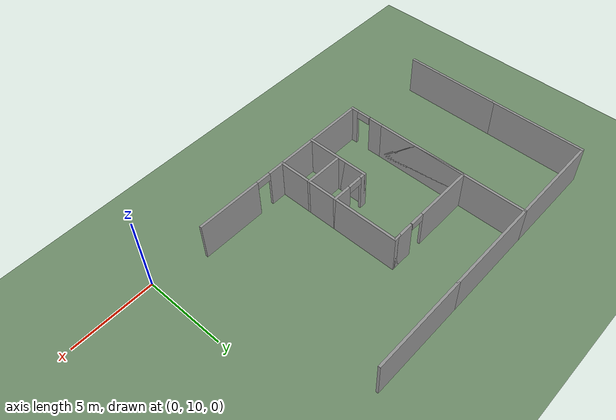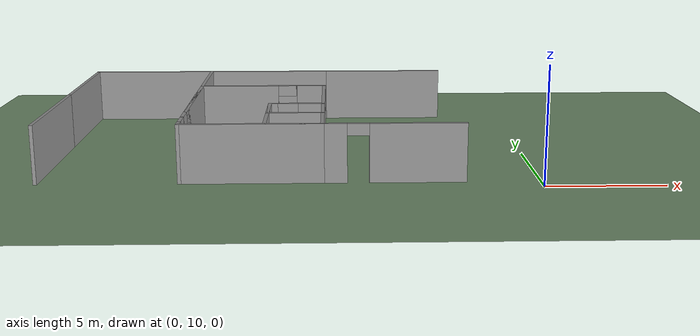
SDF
<sdf version="1.7">
 <world name="default">
  <model name="ground_plane">
   <static>1</static>
   <link name="link">
    <collision name="collision">
     <geometry><plane><normal>0 0 1</normal><size>600 600</size></plane></geometry>
     <surface>
      <contact><collide_bitmask>65535</collide_bitmask></contact>
      <friction><ode><mu>100</mu><mu2>50</mu2></ode></friction>
     </surface>
    </collision>
    <visual name="visual">
     <cast_shadows>0</cast_shadows>
     <geometry><plane><normal>0 0 1</normal><size>100 100</size></plane></geometry>
     <material><ambient>0.45 0.57 0.43 1</ambient><diffuse>0.45 0.57 0.43 1</diffuse></material>
    </visual>
   </link>
  </model>
  <model name="myhal_V3_2">
   <link name="Wall_337">
    <pose>-5.85 20.325 0 0 -0 3.14159</pose>
    <visual name="Wall_337_Visual">
     <pose>0 0 1.25 0 -0 0</pose>
     <geometry><box><size>6 0.15 2.5</size></box></geometry>
     <material>
      <script><uri>file://media/materials/scripts/gazebo.material</uri><name>Gazebo/Grey</name></script>
      <ambient>1 1 1 1</ambient>
      <shader type="pixel"/>
     </material>
     <meta><layer>0</layer></meta>
    </visual>
    <collision name="Wall_337_Collision">
     <pose>0 0 1.25 0 -0 0</pose>
     <geometry><box><size>6 0.15 2.5</size></box></geometry>
     <surface>
      <friction>
       <ode><mu>1</mu><mu2>1</mu2><fdir1>0 0 0</fdir1><slip1>0</slip1><slip2>0</slip2></ode>
       <torsional>
        <coefficient>1</coefficient>
        <patch_radius>0</patch_radius>
        <surface_radius>0</surface_radius>
        <use_patch_radius>1</use_patch_radius>
        <ode><slip>0</slip></ode>
       </torsional>
      </friction>
      <bounce><restitution_coefficient>0</restitution_coefficient><threshold>1e+06</threshold></bounce>
      <contact>
       <collide_without_contact>0</collide_without_contact>
       <collide_without_contact_bitmask>1</collide_without_contact_bitmask>
       <collide_bitmask>1</collide_bitmask>
       <ode>
        <soft_cfm>0</soft_cfm>
        <soft_erp>0.2</soft_erp>
        <kp>1e+13</kp>
        <kd>1</kd>
        <max_vel>0.01</max_vel>
        <min_depth>0</min_depth>
       </ode>
       <bullet>
        <split_impulse>1</split_impulse>
        <split_impulse_penetration_threshold>-0.01</split_impulse_penetration_threshold>
        <soft_cfm>0</soft_cfm>
        <soft_erp>0.2</soft_erp>
        <kp>1e+13</kp>
        <kd>1</kd>
       </bullet>
      </contact>
     </surface>
    </collision>
   </link>
   <link name="Wall_338">
    <pose>-11.7 20.325 0 0 -0 3.14159</pose>
    <visual name="Wall_338_Visual">
     <pose>0 0 1.25 0 -0 0</pose>
     <geometry><box><size>6 0.15 2.5</size></box></geometry>
     <material>
      <script><uri>file://media/materials/scripts/gazebo.material</uri><name>Gazebo/Grey</name></script>
      <ambient>1 1 1 1</ambient>
      <shader type="pixel"/>
     </material>
     <meta><layer>0</layer></meta>
    </visual>
    <collision name="Wall_338_Collision">
     <pose>0 0 1.25 0 -0 0</pose>
     <geometry><box><size>6 0.15 2.5</size></box></geometry>
     <surface>
      <friction>
       <ode><mu>1</mu><mu2>1</mu2><fdir1>0 0 0</fdir1><slip1>0</slip1><slip2>0</slip2></ode>
       <torsional>
        <coefficient>1</coefficient>
        <patch_radius>0</patch_radius>
        <surface_radius>0</surface_radius>
        <use_patch_radius>1</use_patch_radius>
        <ode><slip>0</slip></ode>
       </torsional>
      </friction>
      <bounce><restitution_coefficient>0</restitution_coefficient><threshold>1e+06</threshold></bounce>
      <contact>
       <collide_without_contact>0</collide_without_contact>
       <collide_without_contact_bitmask>1</collide_without_contact_bitmask>
       <collide_bitmask>1</collide_bitmask>
       <ode>
        <soft_cfm>0</soft_cfm>
        <soft_erp>0.2</soft_erp>
        <kp>1e+13</kp>
        <kd>1</kd>
        <max_vel>0.01</max_vel>
        <min_depth>0</min_depth>
       </ode>
       <bullet>
        <split_impulse>1</split_impulse>
        <split_impulse_penetration_threshold>-0.01</split_impulse_penetration_threshold>
        <soft_cfm>0</soft_cfm>
        <soft_erp>0.2</soft_erp>
        <kp>1e+13</kp>
        <kd>1</kd>
       </bullet>
      </contact>
     </surface>
    </collision>
   </link>
   <link name="Wall_339">
    <pose>-17.55 20.325 0 0 -0 3.14159</pose>
    <visual name="Wall_339_Visual">
     <pose>0 0 1.25 0 -0 0</pose>
     <geometry><box><size>6 0.15 2.5</size></box></geometry>
     <material>
      <script><uri>file://media/materials/scripts/gazebo.material</uri><name>Gazebo/Grey</name></script>
      <ambient>1 1 1 1</ambient>
      <shader type="pixel"/>
     </material>
     <meta><layer>0</layer></meta>
    </visual>
    <collision name="Wall_339_Collision">
     <pose>0 0 1.25 0 -0 0</pose>
     <geometry><box><size>6 0.15 2.5</size></box></geometry>
     <surface>
      <friction>
       <ode><mu>1</mu><mu2>1</mu2><fdir1>0 0 0</fdir1><slip1>0</slip1><slip2>0</slip2></ode>
       <torsional>
        <coefficient>1</coefficient>
        <patch_radius>0</patch_radius>
        <surface_radius>0</surface_radius>
        <use_patch_radius>1</use_patch_radius>
        <ode><slip>0</slip></ode>
       </torsional>
      </friction>
      <bounce><restitution_coefficient>0</restitution_coefficient><threshold>1e+06</threshold></bounce>
      <contact>
       <collide_without_contact>0</collide_without_contact>
       <collide_without_contact_bitmask>1</collide_without_contact_bitmask>
       <collide_bitmask>1</collide_bitmask>
       <ode>
        <soft_cfm>0</soft_cfm>
        <soft_erp>0.2</soft_erp>
        <kp>1e+13</kp>
        <kd>1</kd>
        <max_vel>0.01</max_vel>
        <min_depth>0</min_depth>
       </ode>
       <bullet>
        <split_impulse>1</split_impulse>
        <split_impulse_penetration_threshold>-0.01</split_impulse_penetration_threshold>
        <soft_cfm>0</soft_cfm>
        <soft_erp>0.2</soft_erp>
        <kp>1e+13</kp>
        <kd>1</kd>
       </bullet>
      </contact>
     </surface>
    </collision>
   </link>
   <link name="Wall_341">
    <pose>-20.475 17.4 0 0 0 -1.5708</pose>
    <visual name="Wall_341_Visual">
     <pose>0 0 1.25 0 -0 0</pose>
     <geometry><box><size>6 0.15 2.5</size></box></geometry>
     <material>
      <script><uri>file://media/materials/scripts/gazebo.material</uri><name>Gazebo/Grey</name></script>
      <ambient>1 1 1 1</ambient>
      <shader type="pixel"/>
     </material>
     <meta><layer>0</layer></meta>
    </visual>
    <collision name="Wall_341_Collision">
     <pose>0 0 1.25 0 -0 0</pose>
     <geometry><box><size>6 0.15 2.5</size></box></geometry>
     <surface>
      <friction>
       <ode><mu>1</mu><mu2>1</mu2><fdir1>0 0 0</fdir1><slip1>0</slip1><slip2>0</slip2></ode>
       <torsional>
        <coefficient>1</coefficient>
        <patch_radius>0</patch_radius>
        <surface_radius>0</surface_radius>
        <use_patch_radius>1</use_patch_radius>
        <ode><slip>0</slip></ode>
       </torsional>
      </friction>
      <bounce><restitution_coefficient>0</restitution_coefficient><threshold>1e+06</threshold></bounce>
      <contact>
       <collide_without_contact>0</collide_without_contact>
       <collide_without_contact_bitmask>1</collide_without_contact_bitmask>
       <collide_bitmask>1</collide_bitmask>
       <ode>
        <soft_cfm>0</soft_cfm>
        <soft_erp>0.2</soft_erp>
        <kp>1e+13</kp>
        <kd>1</kd>
        <max_vel>0.01</max_vel>
        <min_depth>0</min_depth>
       </ode>
       <bullet>
        <split_impulse>1</split_impulse>
        <split_impulse_penetration_threshold>-0.01</split_impulse_penetration_threshold>
        <soft_cfm>0</soft_cfm>
        <soft_erp>0.2</soft_erp>
        <kp>1e+13</kp>
        <kd>1</kd>
       </bullet>
      </contact>
     </surface>
    </collision>
   </link>
   <link name="Wall_342">
    <pose>-20.475 11.55 0 0 0 -1.5708</pose>
    <visual name="Wall_342_Visual">
     <pose>0 0 1.25 0 -0 0</pose>
     <geometry><box><size>6 0.15 2.5</size></box></geometry>
     <material>
      <script><uri>file://media/materials/scripts/gazebo.material</uri><name>Gazebo/Grey</name></script>
      <ambient>1 1 1 1</ambient>
      <shader type="pixel"/>
     </material>
     <meta><layer>0</layer></meta>
    </visual>
    <collision name="Wall_342_Collision">
     <pose>0 0 1.25 0 -0 0</pose>
     <geometry><box><size>6 0.15 2.5</size></box></geometry>
     <surface>
      <friction>
       <ode><mu>1</mu><mu2>1</mu2><fdir1>0 0 0</fdir1><slip1>0</slip1><slip2>0</slip2></ode>
       <torsional>
        <coefficient>1</coefficient>
        <patch_radius>0</patch_radius>
        <surface_radius>0</surface_radius>
        <use_patch_radius>1</use_patch_radius>
        <ode><slip>0</slip></ode>
       </torsional>
      </friction>
      <bounce><restitution_coefficient>0</restitution_coefficient><threshold>1e+06</threshold></bounce>
      <contact>
       <collide_without_contact>0</collide_without_contact>
       <collide_without_contact_bitmask>1</collide_without_contact_bitmask>
       <collide_bitmask>1</collide_bitmask>
       <ode>
        <soft_cfm>0</soft_cfm>
        <soft_erp>0.2</soft_erp>
        <kp>1e+13</kp>
        <kd>1</kd>
        <max_vel>0.01</max_vel>
        <min_depth>0</min_depth>
       </ode>
       <bullet>
        <split_impulse>1</split_impulse>
        <split_impulse_penetration_threshold>-0.01</split_impulse_penetration_threshold>
        <soft_cfm>0</soft_cfm>
        <soft_erp>0.2</soft_erp>
        <kp>1e+13</kp>
        <kd>1</kd>
       </bullet>
      </contact>
     </surface>
    </collision>
   </link>
   <link name="Wall_358">
    <pose>-14.625 18.4 0 0 -0 1.5708</pose>
    <visual name="Wall_358_Visual">
     <pose>0 0 1.25 0 -0 0</pose>
     <geometry><box><size>4 0.15 2.5</size></box></geometry>
     <material>
      <script><uri>file://media/materials/scripts/gazebo.material</uri><name>Gazebo/Grey</name></script>
      <ambient>1 1 1 1</ambient>
      <shader type="pixel"/>
     </material>
     <meta><layer>0</layer></meta>
    </visual>
    <collision name="Wall_358_Collision">
     <pose>0 0 1.25 0 -0 0</pose>
     <geometry><box><size>4 0.15 2.5</size></box></geometry>
     <surface>
      <friction>
       <ode><mu>1</mu><mu2>1</mu2><fdir1>0 0 0</fdir1><slip1>0</slip1><slip2>0</slip2></ode>
       <torsional>
        <coefficient>1</coefficient>
        <patch_radius>0</patch_radius>
        <surface_radius>0</surface_radius>
        <use_patch_radius>1</use_patch_radius>
        <ode><slip>0</slip></ode>
       </torsional>
      </friction>
      <bounce><restitution_coefficient>0</restitution_coefficient><threshold>1e+06</threshold></bounce>
      <contact>
       <collide_without_contact>0</collide_without_contact>
       <collide_without_contact_bitmask>1</collide_without_contact_bitmask>
       <collide_bitmask>1</collide_bitmask>
       <ode>
        <soft_cfm>0</soft_cfm>
        <soft_erp>0.2</soft_erp>
        <kp>1e+13</kp>
        <kd>1</kd>
        <max_vel>0.01</max_vel>
        <min_depth>0</min_depth>
       </ode>
       <bullet>
        <split_impulse>1</split_impulse>
        <split_impulse_penetration_threshold>-0.01</split_impulse_penetration_threshold>
        <soft_cfm>0</soft_cfm>
        <soft_erp>0.2</soft_erp>
        <kp>1e+13</kp>
        <kd>1</kd>
       </bullet>
      </contact>
     </surface>
    </collision>
   </link>
   <link name="Wall_360">
    <pose>-11.7 16.475 0 0 -0 0</pose>
    <visual name="Wall_360_Visual_0">
     <pose>-1.13429 0 1.25 0 -0 0</pose>
     <geometry><box><size>3.73142 0.15 2.5</size></box></geometry>
     <material>
      <script><uri>file://media/materials/scripts/gazebo.material</uri><name>Gazebo/Grey</name></script>
      <ambient>1 1 1 1</ambient>
      <shader type="pixel"/>
     </material>
     <meta><layer>0</layer></meta>
    </visual>
    <visual name="Wall_360_Visual_1">
     <pose>2.31571 0 1.25 0 -0 0</pose>
     <geometry><box><size>1.36858 0.15 2.5</size></box></geometry>
     <material>
      <script><uri>file://media/materials/scripts/gazebo.material</uri><name>Gazebo/Grey</name></script>
      <ambient>1 1 1 1</ambient>
      <shader type="pixel"/>
     </material>
     <meta><layer>0</layer></meta>
    </visual>
    <visual name="Wall_360_Visual_2">
     <pose>2.74704 0 1.25 0 -0 0</pose>
     <geometry><box><size>0.505924 0.15 2.5</size></box></geometry>
     <material>
      <script><uri>file://media/materials/scripts/gazebo.material</uri><name>Gazebo/Grey</name></script>
      <ambient>1 1 1 1</ambient>
      <shader type="pixel"/>
     </material>
     <meta><layer>0</layer></meta>
    </visual>
    <visual name="Wall_360_Visual_3">
     <pose>1.16275 0 2.25 0 -0 0</pose>
     <geometry><box><size>0.862653 0.15 0.5</size></box></geometry>
     <material>
      <script><uri>file://media/materials/scripts/gazebo.material</uri><name>Gazebo/Grey</name></script>
      <ambient>1 1 1 1</ambient>
      <shader type="pixel"/>
     </material>
     <meta><layer>0</layer></meta>
    </visual>
    <collision name="Wall_360_Collision_0">
     <pose>-1.13429 0 1.25 0 -0 0</pose>
     <geometry><box><size>3.73142 0.15 2.5</size></box></geometry>
     <surface>
      <friction>
       <ode><mu>1</mu><mu2>1</mu2><fdir1>0 0 0</fdir1><slip1>0</slip1><slip2>0</slip2></ode>
       <torsional>
        <coefficient>1</coefficient>
        <patch_radius>0</patch_radius>
        <surface_radius>0</surface_radius>
        <use_patch_radius>1</use_patch_radius>
        <ode><slip>0</slip></ode>
       </torsional>
      </friction>
      <bounce><restitution_coefficient>0</restitution_coefficient><threshold>1e+06</threshold></bounce>
      <contact>
       <collide_without_contact>0</collide_without_contact>
       <collide_without_contact_bitmask>1</collide_without_contact_bitmask>
       <collide_bitmask>1</collide_bitmask>
       <ode>
        <soft_cfm>0</soft_cfm>
        <soft_erp>0.2</soft_erp>
        <kp>1e+13</kp>
        <kd>1</kd>
        <max_vel>0.01</max_vel>
        <min_depth>0</min_depth>
       </ode>
       <bullet>
        <split_impulse>1</split_impulse>
        <split_impulse_penetration_threshold>-0.01</split_impulse_penetration_threshold>
        <soft_cfm>0</soft_cfm>
        <soft_erp>0.2</soft_erp>
        <kp>1e+13</kp>
        <kd>1</kd>
       </bullet>
      </contact>
     </surface>
    </collision>
    <collision name="Wall_360_Collision_1">
     <pose>2.31571 0 1.25 0 -0 0</pose>
     <geometry><box><size>1.36858 0.15 2.5</size></box></geometry>
     <surface>
      <friction>
       <ode><mu>1</mu><mu2>1</mu2><fdir1>0 0 0</fdir1><slip1>0</slip1><slip2>0</slip2></ode>
       <torsional>
        <coefficient>1</coefficient>
        <patch_radius>0</patch_radius>
        <surface_radius>0</surface_radius>
        <use_patch_radius>1</use_patch_radius>
        <ode><slip>0</slip></ode>
       </torsional>
      </friction>
      <bounce><restitution_coefficient>0</restitution_coefficient><threshold>1e+06</threshold></bounce>
      <contact>
       <collide_without_contact>0</collide_without_contact>
       <collide_without_contact_bitmask>1</collide_without_contact_bitmask>
       <collide_bitmask>1</collide_bitmask>
       <ode>
        <soft_cfm>0</soft_cfm>
        <soft_erp>0.2</soft_erp>
        <kp>1e+13</kp>
        <kd>1</kd>
        <max_vel>0.01</max_vel>
        <min_depth>0</min_depth>
       </ode>
       <bullet>
        <split_impulse>1</split_impulse>
        <split_impulse_penetration_threshold>-0.01</split_impulse_penetration_threshold>
        <soft_cfm>0</soft_cfm>
        <soft_erp>0.2</soft_erp>
        <kp>1e+13</kp>
        <kd>1</kd>
       </bullet>
      </contact>
     </surface>
    </collision>
    <collision name="Wall_360_Collision_2">
     <pose>2.74704 0 1.25 0 -0 0</pose>
     <geometry><box><size>0.505924 0.15 2.5</size></box></geometry>
     <surface>
      <friction>
       <ode><mu>1</mu><mu2>1</mu2><fdir1>0 0 0</fdir1><slip1>0</slip1><slip2>0</slip2></ode>
       <torsional>
        <coefficient>1</coefficient>
        <patch_radius>0</patch_radius>
        <surface_radius>0</surface_radius>
        <use_patch_radius>1</use_patch_radius>
        <ode><slip>0</slip></ode>
       </torsional>
      </friction>
      <bounce><restitution_coefficient>0</restitution_coefficient><threshold>1e+06</threshold></bounce>
      <contact>
       <collide_without_contact>0</collide_without_contact>
       <collide_without_contact_bitmask>1</collide_without_contact_bitmask>
       <collide_bitmask>1</collide_bitmask>
       <ode>
        <soft_cfm>0</soft_cfm>
        <soft_erp>0.2</soft_erp>
        <kp>1e+13</kp>
        <kd>1</kd>
        <max_vel>0.01</max_vel>
        <min_depth>0</min_depth>
       </ode>
       <bullet>
        <split_impulse>1</split_impulse>
        <split_impulse_penetration_threshold>-0.01</split_impulse_penetration_threshold>
        <soft_cfm>0</soft_cfm>
        <soft_erp>0.2</soft_erp>
        <kp>1e+13</kp>
        <kd>1</kd>
       </bullet>
      </contact>
     </surface>
    </collision>
    <collision name="Wall_360_Collision_3">
     <pose>1.16275 0 2.25 0 -0 0</pose>
     <geometry><box><size>0.862653 0.15 0.5</size></box></geometry>
     <surface>
      <friction>
       <ode><mu>1</mu><mu2>1</mu2><fdir1>0 0 0</fdir1><slip1>0</slip1><slip2>0</slip2></ode>
       <torsional>
        <coefficient>1</coefficient>
        <patch_radius>0</patch_radius>
        <surface_radius>0</surface_radius>
        <use_patch_radius>1</use_patch_radius>
        <ode><slip>0</slip></ode>
       </torsional>
      </friction>
      <bounce><restitution_coefficient>0</restitution_coefficient><threshold>1e+06</threshold></bounce>
      <contact>
       <collide_without_contact>0</collide_without_contact>
       <collide_without_contact_bitmask>1</collide_without_contact_bitmask>
       <collide_bitmask>1</collide_bitmask>
       <ode>
        <soft_cfm>0</soft_cfm>
        <soft_erp>0.2</soft_erp>
        <kp>1e+13</kp>
        <kd>1</kd>
        <max_vel>0.01</max_vel>
        <min_depth>0</min_depth>
       </ode>
       <bullet>
        <split_impulse>1</split_impulse>
        <split_impulse_penetration_threshold>-0.01</split_impulse_penetration_threshold>
        <soft_cfm>0</soft_cfm>
        <soft_erp>0.2</soft_erp>
        <kp>1e+13</kp>
        <kd>1</kd>
       </bullet>
      </contact>
     </surface>
    </collision>
   </link>
   <link name="Wall_362">
    <pose>-8.775 12.55 0 0 0 -1.5708</pose>
    <visual name="Wall_362_Visual">
     <pose>0 0 1.25 0 -0 0</pose>
     <geometry><box><size>8 0.15 2.5</size></box></geometry>
     <material>
      <script><uri>file://media/materials/scripts/gazebo.material</uri><name>Gazebo/Grey</name></script>
      <ambient>1 1 1 1</ambient>
      <shader type="pixel"/>
     </material>
     <meta><layer>0</layer></meta>
    </visual>
    <collision name="Wall_362_Collision">
     <pose>0 0 1.25 0 -0 0</pose>
     <geometry><box><size>8 0.15 2.5</size></box></geometry>
     <surface>
      <friction>
       <ode><mu>1</mu><mu2>1</mu2><fdir1>0 0 0</fdir1><slip1>0</slip1><slip2>0</slip2></ode>
       <torsional>
        <coefficient>1</coefficient>
        <patch_radius>0</patch_radius>
        <surface_radius>0</surface_radius>
        <use_patch_radius>1</use_patch_radius>
        <ode><slip>0</slip></ode>
       </torsional>
      </friction>
      <bounce><restitution_coefficient>0</restitution_coefficient><threshold>1e+06</threshold></bounce>
      <contact>
       <collide_without_contact>0</collide_without_contact>
       <collide_without_contact_bitmask>1</collide_without_contact_bitmask>
       <collide_bitmask>1</collide_bitmask>
       <ode>
        <soft_cfm>0</soft_cfm>
        <soft_erp>0.2</soft_erp>
        <kp>1e+13</kp>
        <kd>1</kd>
        <max_vel>0.01</max_vel>
        <min_depth>0</min_depth>
       </ode>
       <bullet>
        <split_impulse>1</split_impulse>
        <split_impulse_penetration_threshold>-0.01</split_impulse_penetration_threshold>
        <soft_cfm>0</soft_cfm>
        <soft_erp>0.2</soft_erp>
        <kp>1e+13</kp>
        <kd>1</kd>
       </bullet>
      </contact>
     </surface>
    </collision>
   </link>
   <link name="Wall_363">
    <pose>-11.7 8.625 0 0 -0 3.14159</pose>
    <visual name="Wall_363_Visual">
     <pose>0 0 1.25 0 -0 0</pose>
     <geometry><box><size>6 0.15 2.5</size></box></geometry>
     <material>
      <script><uri>file://media/materials/scripts/gazebo.material</uri><name>Gazebo/Grey</name></script>
      <ambient>1 1 1 1</ambient>
      <shader type="pixel"/>
     </material>
     <meta><layer>0</layer></meta>
    </visual>
    <collision name="Wall_363_Collision">
     <pose>0 0 1.25 0 -0 0</pose>
     <geometry><box><size>6 0.15 2.5</size></box></geometry>
     <surface>
      <friction>
       <ode><mu>1</mu><mu2>1</mu2><fdir1>0 0 0</fdir1><slip1>0</slip1><slip2>0</slip2></ode>
       <torsional>
        <coefficient>1</coefficient>
        <patch_radius>0</patch_radius>
        <surface_radius>0</surface_radius>
        <use_patch_radius>1</use_patch_radius>
        <ode><slip>0</slip></ode>
       </torsional>
      </friction>
      <bounce><restitution_coefficient>0</restitution_coefficient><threshold>1e+06</threshold></bounce>
      <contact>
       <collide_without_contact>0</collide_without_contact>
       <collide_without_contact_bitmask>1</collide_without_contact_bitmask>
       <collide_bitmask>1</collide_bitmask>
       <ode>
        <soft_cfm>0</soft_cfm>
        <soft_erp>0.2</soft_erp>
        <kp>1e+13</kp>
        <kd>1</kd>
        <max_vel>0.01</max_vel>
        <min_depth>0</min_depth>
       </ode>
       <bullet>
        <split_impulse>1</split_impulse>
        <split_impulse_penetration_threshold>-0.01</split_impulse_penetration_threshold>
        <soft_cfm>0</soft_cfm>
        <soft_erp>0.2</soft_erp>
        <kp>1e+13</kp>
        <kd>1</kd>
       </bullet>
      </contact>
     </surface>
    </collision>
   </link>
   <link name="Wall_364">
    <pose>-14.625 12.55 0 0 -0 1.5708</pose>
    <visual name="Wall_364_Visual_0">
     <pose>-3.75018 0 1.25 0 -0 0</pose>
     <geometry><box><size>0.499636 0.15 2.5</size></box></geometry>
     <material>
      <script><uri>file://media/materials/scripts/gazebo.material</uri><name>Gazebo/Grey</name></script>
      <ambient>1 1 1 1</ambient>
      <shader type="pixel"/>
     </material>
     <meta><layer>0</layer></meta>
    </visual>
    <visual name="Wall_364_Visual_1">
     <pose>0.699818 0 1.25 0 -0 0</pose>
     <geometry><box><size>6.60036 0.15 2.5</size></box></geometry>
     <material>
      <script><uri>file://media/materials/scripts/gazebo.material</uri><name>Gazebo/Grey</name></script>
      <ambient>1 1 1 1</ambient>
      <shader type="pixel"/>
     </material>
     <meta><layer>0</layer></meta>
    </visual>
    <visual name="Wall_364_Visual_2">
     <pose>1.13114 0 1.25 0 -0 0</pose>
     <geometry><box><size>5.73771 0.15 2.5</size></box></geometry>
     <material>
      <script><uri>file://media/materials/scripts/gazebo.material</uri><name>Gazebo/Grey</name></script>
      <ambient>1 1 1 1</ambient>
      <shader type="pixel"/>
     </material>
     <meta><layer>0</layer></meta>
    </visual>
    <visual name="Wall_364_Visual_3">
     <pose>-3.06904 0 2.25 0 -0 0</pose>
     <geometry><box><size>0.862653 0.15 0.5</size></box></geometry>
     <material>
      <script><uri>file://media/materials/scripts/gazebo.material</uri><name>Gazebo/Grey</name></script>
      <ambient>1 1 1 1</ambient>
      <shader type="pixel"/>
     </material>
     <meta><layer>0</layer></meta>
    </visual>
    <collision name="Wall_364_Collision_0">
     <pose>-3.75018 0 1.25 0 -0 0</pose>
     <geometry><box><size>0.499636 0.15 2.5</size></box></geometry>
     <surface>
      <friction>
       <ode><mu>1</mu><mu2>1</mu2><fdir1>0 0 0</fdir1><slip1>0</slip1><slip2>0</slip2></ode>
       <torsional>
        <coefficient>1</coefficient>
        <patch_radius>0</patch_radius>
        <surface_radius>0</surface_radius>
        <use_patch_radius>1</use_patch_radius>
        <ode><slip>0</slip></ode>
       </torsional>
      </friction>
      <bounce><restitution_coefficient>0</restitution_coefficient><threshold>1e+06</threshold></bounce>
      <contact>
       <collide_without_contact>0</collide_without_contact>
       <collide_without_contact_bitmask>1</collide_without_contact_bitmask>
       <collide_bitmask>1</collide_bitmask>
       <ode>
        <soft_cfm>0</soft_cfm>
        <soft_erp>0.2</soft_erp>
        <kp>1e+13</kp>
        <kd>1</kd>
        <max_vel>0.01</max_vel>
        <min_depth>0</min_depth>
       </ode>
       <bullet>
        <split_impulse>1</split_impulse>
        <split_impulse_penetration_threshold>-0.01</split_impulse_penetration_threshold>
        <soft_cfm>0</soft_cfm>
        <soft_erp>0.2</soft_erp>
        <kp>1e+13</kp>
        <kd>1</kd>
       </bullet>
      </contact>
     </surface>
    </collision>
    <collision name="Wall_364_Collision_1">
     <pose>0.699818 0 1.25 0 -0 0</pose>
     <geometry><box><size>6.60036 0.15 2.5</size></box></geometry>
     <surface>
      <friction>
       <ode><mu>1</mu><mu2>1</mu2><fdir1>0 0 0</fdir1><slip1>0</slip1><slip2>0</slip2></ode>
       <torsional>
        <coefficient>1</coefficient>
        <patch_radius>0</patch_radius>
        <surface_radius>0</surface_radius>
        <use_patch_radius>1</use_patch_radius>
        <ode><slip>0</slip></ode>
       </torsional>
      </friction>
      <bounce><restitution_coefficient>0</restitution_coefficient><threshold>1e+06</threshold></bounce>
      <contact>
       <collide_without_contact>0</collide_without_contact>
       <collide_without_contact_bitmask>1</collide_without_contact_bitmask>
       <collide_bitmask>1</collide_bitmask>
       <ode>
        <soft_cfm>0</soft_cfm>
        <soft_erp>0.2</soft_erp>
        <kp>1e+13</kp>
        <kd>1</kd>
        <max_vel>0.01</max_vel>
        <min_depth>0</min_depth>
       </ode>
       <bullet>
        <split_impulse>1</split_impulse>
        <split_impulse_penetration_threshold>-0.01</split_impulse_penetration_threshold>
        <soft_cfm>0</soft_cfm>
        <soft_erp>0.2</soft_erp>
        <kp>1e+13</kp>
        <kd>1</kd>
       </bullet>
      </contact>
     </surface>
    </collision>
    <collision name="Wall_364_Collision_2">
     <pose>1.13114 0 1.25 0 -0 0</pose>
     <geometry><box><size>5.73771 0.15 2.5</size></box></geometry>
     <surface>
      <friction>
       <ode><mu>1</mu><mu2>1</mu2><fdir1>0 0 0</fdir1><slip1>0</slip1><slip2>0</slip2></ode>
       <torsional>
        <coefficient>1</coefficient>
        <patch_radius>0</patch_radius>
        <surface_radius>0</surface_radius>
        <use_patch_radius>1</use_patch_radius>
        <ode><slip>0</slip></ode>
       </torsional>
      </friction>
      <bounce><restitution_coefficient>0</restitution_coefficient><threshold>1e+06</threshold></bounce>
      <contact>
       <collide_without_contact>0</collide_without_contact>
       <collide_without_contact_bitmask>1</collide_without_contact_bitmask>
       <collide_bitmask>1</collide_bitmask>
       <ode>
        <soft_cfm>0</soft_cfm>
        <soft_erp>0.2</soft_erp>
        <kp>1e+13</kp>
        <kd>1</kd>
        <max_vel>0.01</max_vel>
        <min_depth>0</min_depth>
       </ode>
       <bullet>
        <split_impulse>1</split_impulse>
        <split_impulse_penetration_threshold>-0.01</split_impulse_penetration_threshold>
        <soft_cfm>0</soft_cfm>
        <soft_erp>0.2</soft_erp>
        <kp>1e+13</kp>
        <kd>1</kd>
       </bullet>
      </contact>
     </surface>
    </collision>
    <collision name="Wall_364_Collision_3">
     <pose>-3.06904 0 2.25 0 -0 0</pose>
     <geometry><box><size>0.862653 0.15 0.5</size></box></geometry>
     <surface>
      <friction>
       <ode><mu>1</mu><mu2>1</mu2><fdir1>0 0 0</fdir1><slip1>0</slip1><slip2>0</slip2></ode>
       <torsional>
        <coefficient>1</coefficient>
        <patch_radius>0</patch_radius>
        <surface_radius>0</surface_radius>
        <use_patch_radius>1</use_patch_radius>
        <ode><slip>0</slip></ode>
       </torsional>
      </friction>
      <bounce><restitution_coefficient>0</restitution_coefficient><threshold>1e+06</threshold></bounce>
      <contact>
       <collide_without_contact>0</collide_without_contact>
       <collide_without_contact_bitmask>1</collide_without_contact_bitmask>
       <collide_bitmask>1</collide_bitmask>
       <ode>
        <soft_cfm>0</soft_cfm>
        <soft_erp>0.2</soft_erp>
        <kp>1e+13</kp>
        <kd>1</kd>
        <max_vel>0.01</max_vel>
        <min_depth>0</min_depth>
       </ode>
       <bullet>
        <split_impulse>1</split_impulse>
        <split_impulse_penetration_threshold>-0.01</split_impulse_penetration_threshold>
        <soft_cfm>0</soft_cfm>
        <soft_erp>0.2</soft_erp>
        <kp>1e+13</kp>
        <kd>1</kd>
       </bullet>
      </contact>
     </surface>
    </collision>
   </link>
   <link name="Wall_366">
    <pose>-9.95 8.625 0 0 -0 3.14159</pose>
    <visual name="Wall_366_Visual">
     <pose>0 0 1.25 0 -0 0</pose>
     <geometry><box><size>2.5 0.15 2.5</size></box></geometry>
     <material>
      <script><uri>file://media/materials/scripts/gazebo.material</uri><name>Gazebo/Grey</name></script>
      <ambient>1 1 1 1</ambient>
      <shader type="pixel"/>
     </material>
     <meta><layer>0</layer></meta>
    </visual>
    <collision name="Wall_366_Collision">
     <pose>0 0 1.25 0 -0 0</pose>
     <geometry><box><size>2.5 0.15 2.5</size></box></geometry>
     <surface>
      <friction>
       <ode><mu>1</mu><mu2>1</mu2><fdir1>0 0 0</fdir1><slip1>0</slip1><slip2>0</slip2></ode>
       <torsional>
        <coefficient>1</coefficient>
        <patch_radius>0</patch_radius>
        <surface_radius>0</surface_radius>
        <use_patch_radius>1</use_patch_radius>
        <ode><slip>0</slip></ode>
       </torsional>
      </friction>
      <bounce><restitution_coefficient>0</restitution_coefficient><threshold>1e+06</threshold></bounce>
      <contact>
       <collide_without_contact>0</collide_without_contact>
       <collide_without_contact_bitmask>1</collide_without_contact_bitmask>
       <collide_bitmask>1</collide_bitmask>
       <ode>
        <soft_cfm>0</soft_cfm>
        <soft_erp>0.2</soft_erp>
        <kp>1e+13</kp>
        <kd>1</kd>
        <max_vel>0.01</max_vel>
        <min_depth>0</min_depth>
       </ode>
       <bullet>
        <split_impulse>1</split_impulse>
        <split_impulse_penetration_threshold>-0.01</split_impulse_penetration_threshold>
        <soft_cfm>0</soft_cfm>
        <soft_erp>0.2</soft_erp>
        <kp>1e+13</kp>
        <kd>1</kd>
       </bullet>
      </contact>
     </surface>
    </collision>
   </link>
   <link name="Wall_367">
    <pose>-11.125 10.55 0 0 -0 1.5708</pose>
    <visual name="Wall_367_Visual">
     <pose>0 0 1.25 0 -0 0</pose>
     <geometry><box><size>4 0.15 2.5</size></box></geometry>
     <material>
      <script><uri>file://media/materials/scripts/gazebo.material</uri><name>Gazebo/Grey</name></script>
      <ambient>1 1 1 1</ambient>
      <shader type="pixel"/>
     </material>
     <meta><layer>0</layer></meta>
    </visual>
    <collision name="Wall_367_Collision">
     <pose>0 0 1.25 0 -0 0</pose>
     <geometry><box><size>4 0.15 2.5</size></box></geometry>
     <surface>
      <friction>
       <ode><mu>1</mu><mu2>1</mu2><fdir1>0 0 0</fdir1><slip1>0</slip1><slip2>0</slip2></ode>
       <torsional>
        <coefficient>1</coefficient>
        <patch_radius>0</patch_radius>
        <surface_radius>0</surface_radius>
        <use_patch_radius>1</use_patch_radius>
        <ode><slip>0</slip></ode>
       </torsional>
      </friction>
      <bounce><restitution_coefficient>0</restitution_coefficient><threshold>1e+06</threshold></bounce>
      <contact>
       <collide_without_contact>0</collide_without_contact>
       <collide_without_contact_bitmask>1</collide_without_contact_bitmask>
       <collide_bitmask>1</collide_bitmask>
       <ode>
        <soft_cfm>0</soft_cfm>
        <soft_erp>0.2</soft_erp>
        <kp>1e+13</kp>
        <kd>1</kd>
        <max_vel>0.01</max_vel>
        <min_depth>0</min_depth>
       </ode>
       <bullet>
        <split_impulse>1</split_impulse>
        <split_impulse_penetration_threshold>-0.01</split_impulse_penetration_threshold>
        <soft_cfm>0</soft_cfm>
        <soft_erp>0.2</soft_erp>
        <kp>1e+13</kp>
        <kd>1</kd>
       </bullet>
      </contact>
     </surface>
    </collision>
   </link>
   <link name="Wall_368">
    <pose>-9.95 12.475 0 0 -0 0</pose>
    <visual name="Wall_368_Visual_0">
     <pose>-1.03753 0 1.25 0 -0 0</pose>
     <geometry><box><size>0.424942 0.15 2.5</size></box></geometry>
     <material>
      <script><uri>file://media/materials/scripts/gazebo.material</uri><name>Gazebo/Grey</name></script>
      <ambient>1 1 1 1</ambient>
      <shader type="pixel"/>
     </material>
     <meta><layer>0</layer></meta>
    </visual>
    <visual name="Wall_368_Visual_1">
     <pose>0.662471 0 1.25 0 -0 0</pose>
     <geometry><box><size>1.17506 0.15 2.5</size></box></geometry>
     <material>
      <script><uri>file://media/materials/scripts/gazebo.material</uri><name>Gazebo/Grey</name></script>
      <ambient>1 1 1 1</ambient>
      <shader type="pixel"/>
     </material>
     <meta><layer>0</layer></meta>
    </visual>
    <visual name="Wall_368_Visual_2">
     <pose>-0.375058 0 2.25 0 -0 0</pose>
     <geometry><box><size>0.9 0.15 0.5</size></box></geometry>
     <material>
      <script><uri>file://media/materials/scripts/gazebo.material</uri><name>Gazebo/Grey</name></script>
      <ambient>1 1 1 1</ambient>
      <shader type="pixel"/>
     </material>
     <meta><layer>0</layer></meta>
    </visual>
    <collision name="Wall_368_Collision_0">
     <pose>-1.03753 0 1.25 0 -0 0</pose>
     <geometry><box><size>0.424942 0.15 2.5</size></box></geometry>
     <surface>
      <friction>
       <ode><mu>1</mu><mu2>1</mu2><fdir1>0 0 0</fdir1><slip1>0</slip1><slip2>0</slip2></ode>
       <torsional>
        <coefficient>1</coefficient>
        <patch_radius>0</patch_radius>
        <surface_radius>0</surface_radius>
        <use_patch_radius>1</use_patch_radius>
        <ode><slip>0</slip></ode>
       </torsional>
      </friction>
      <bounce><restitution_coefficient>0</restitution_coefficient><threshold>1e+06</threshold></bounce>
      <contact>
       <collide_without_contact>0</collide_without_contact>
       <collide_without_contact_bitmask>1</collide_without_contact_bitmask>
       <collide_bitmask>1</collide_bitmask>
       <ode>
        <soft_cfm>0</soft_cfm>
        <soft_erp>0.2</soft_erp>
        <kp>1e+13</kp>
        <kd>1</kd>
        <max_vel>0.01</max_vel>
        <min_depth>0</min_depth>
       </ode>
       <bullet>
        <split_impulse>1</split_impulse>
        <split_impulse_penetration_threshold>-0.01</split_impulse_penetration_threshold>
        <soft_cfm>0</soft_cfm>
        <soft_erp>0.2</soft_erp>
        <kp>1e+13</kp>
        <kd>1</kd>
       </bullet>
      </contact>
     </surface>
    </collision>
    <collision name="Wall_368_Collision_1">
     <pose>0.662471 0 1.25 0 -0 0</pose>
     <geometry><box><size>1.17506 0.15 2.5</size></box></geometry>
     <surface>
      <friction>
       <ode><mu>1</mu><mu2>1</mu2><fdir1>0 0 0</fdir1><slip1>0</slip1><slip2>0</slip2></ode>
       <torsional>
        <coefficient>1</coefficient>
        <patch_radius>0</patch_radius>
        <surface_radius>0</surface_radius>
        <use_patch_radius>1</use_patch_radius>
        <ode><slip>0</slip></ode>
       </torsional>
      </friction>
      <bounce><restitution_coefficient>0</restitution_coefficient><threshold>1e+06</threshold></bounce>
      <contact>
       <collide_without_contact>0</collide_without_contact>
       <collide_without_contact_bitmask>1</collide_without_contact_bitmask>
       <collide_bitmask>1</collide_bitmask>
       <ode>
        <soft_cfm>0</soft_cfm>
        <soft_erp>0.2</soft_erp>
        <kp>1e+13</kp>
        <kd>1</kd>
        <max_vel>0.01</max_vel>
        <min_depth>0</min_depth>
       </ode>
       <bullet>
        <split_impulse>1</split_impulse>
        <split_impulse_penetration_threshold>-0.01</split_impulse_penetration_threshold>
        <soft_cfm>0</soft_cfm>
        <soft_erp>0.2</soft_erp>
        <kp>1e+13</kp>
        <kd>1</kd>
       </bullet>
      </contact>
     </surface>
    </collision>
    <collision name="Wall_368_Collision_2">
     <pose>-0.375058 0 2.25 0 -0 0</pose>
     <geometry><box><size>0.9 0.15 0.5</size></box></geometry>
     <surface>
      <friction>
       <ode><mu>1</mu><mu2>1</mu2><fdir1>0 0 0</fdir1><slip1>0</slip1><slip2>0</slip2></ode>
       <torsional>
        <coefficient>1</coefficient>
        <patch_radius>0</patch_radius>
        <surface_radius>0</surface_radius>
        <use_patch_radius>1</use_patch_radius>
        <ode><slip>0</slip></ode>
       </torsional>
      </friction>
      <bounce><restitution_coefficient>0</restitution_coefficient><threshold>1e+06</threshold></bounce>
      <contact>
       <collide_without_contact>0</collide_without_contact>
       <collide_without_contact_bitmask>1</collide_without_contact_bitmask>
       <collide_bitmask>1</collide_bitmask>
       <ode>
        <soft_cfm>0</soft_cfm>
        <soft_erp>0.2</soft_erp>
        <kp>1e+13</kp>
        <kd>1</kd>
        <max_vel>0.01</max_vel>
        <min_depth>0</min_depth>
       </ode>
       <bullet>
        <split_impulse>1</split_impulse>
        <split_impulse_penetration_threshold>-0.01</split_impulse_penetration_threshold>
        <soft_cfm>0</soft_cfm>
        <soft_erp>0.2</soft_erp>
        <kp>1e+13</kp>
        <kd>1</kd>
       </bullet>
      </contact>
     </surface>
    </collision>
   </link>
   <link name="Wall_370">
    <pose>-5.85 8.625 0 0 -0 0</pose>
    <visual name="Wall_370_Visual_0">
     <pose>-2.45569 0 1.25 0 -0 0</pose>
     <geometry><box><size>1.08861 0.15 2.5</size></box></geometry>
     <material>
      <script><uri>file://media/materials/scripts/gazebo.material</uri><name>Gazebo/Grey</name></script>
      <ambient>1 1 1 1</ambient>
      <shader type="pixel"/>
     </material>
     <meta><layer>0</layer></meta>
    </visual>
    <visual name="Wall_370_Visual_1">
     <pose>0.994306 0 1.25 0 -0 0</pose>
     <geometry><box><size>4.01139 0.15 2.5</size></box></geometry>
     <material>
      <script><uri>file://media/materials/scripts/gazebo.material</uri><name>Gazebo/Grey</name></script>
      <ambient>1 1 1 1</ambient>
      <shader type="pixel"/>
     </material>
     <meta><layer>0</layer></meta>
    </visual>
    <visual name="Wall_370_Visual_2">
     <pose>-1.46139 0 2.25 0 -0 0</pose>
     <geometry><box><size>0.9 0.15 0.5</size></box></geometry>
     <material>
      <script><uri>file://media/materials/scripts/gazebo.material</uri><name>Gazebo/Grey</name></script>
      <ambient>1 1 1 1</ambient>
      <shader type="pixel"/>
     </material>
     <meta><layer>0</layer></meta>
    </visual>
    <collision name="Wall_370_Collision_0">
     <pose>-2.45569 0 1.25 0 -0 0</pose>
     <geometry><box><size>1.08861 0.15 2.5</size></box></geometry>
     <surface>
      <friction>
       <ode><mu>1</mu><mu2>1</mu2><fdir1>0 0 0</fdir1><slip1>0</slip1><slip2>0</slip2></ode>
       <torsional>
        <coefficient>1</coefficient>
        <patch_radius>0</patch_radius>
        <surface_radius>0</surface_radius>
        <use_patch_radius>1</use_patch_radius>
        <ode><slip>0</slip></ode>
       </torsional>
      </friction>
      <bounce><restitution_coefficient>0</restitution_coefficient><threshold>1e+06</threshold></bounce>
      <contact>
       <collide_without_contact>0</collide_without_contact>
       <collide_without_contact_bitmask>1</collide_without_contact_bitmask>
       <collide_bitmask>1</collide_bitmask>
       <ode>
        <soft_cfm>0</soft_cfm>
        <soft_erp>0.2</soft_erp>
        <kp>1e+13</kp>
        <kd>1</kd>
        <max_vel>0.01</max_vel>
        <min_depth>0</min_depth>
       </ode>
       <bullet>
        <split_impulse>1</split_impulse>
        <split_impulse_penetration_threshold>-0.01</split_impulse_penetration_threshold>
        <soft_cfm>0</soft_cfm>
        <soft_erp>0.2</soft_erp>
        <kp>1e+13</kp>
        <kd>1</kd>
       </bullet>
      </contact>
     </surface>
    </collision>
    <collision name="Wall_370_Collision_1">
     <pose>0.994306 0 1.25 0 -0 0</pose>
     <geometry><box><size>4.01139 0.15 2.5</size></box></geometry>
     <surface>
      <friction>
       <ode><mu>1</mu><mu2>1</mu2><fdir1>0 0 0</fdir1><slip1>0</slip1><slip2>0</slip2></ode>
       <torsional>
        <coefficient>1</coefficient>
        <patch_radius>0</patch_radius>
        <surface_radius>0</surface_radius>
        <use_patch_radius>1</use_patch_radius>
        <ode><slip>0</slip></ode>
       </torsional>
      </friction>
      <bounce><restitution_coefficient>0</restitution_coefficient><threshold>1e+06</threshold></bounce>
      <contact>
       <collide_without_contact>0</collide_without_contact>
       <collide_without_contact_bitmask>1</collide_without_contact_bitmask>
       <collide_bitmask>1</collide_bitmask>
       <ode>
        <soft_cfm>0</soft_cfm>
        <soft_erp>0.2</soft_erp>
        <kp>1e+13</kp>
        <kd>1</kd>
        <max_vel>0.01</max_vel>
        <min_depth>0</min_depth>
       </ode>
       <bullet>
        <split_impulse>1</split_impulse>
        <split_impulse_penetration_threshold>-0.01</split_impulse_penetration_threshold>
        <soft_cfm>0</soft_cfm>
        <soft_erp>0.2</soft_erp>
        <kp>1e+13</kp>
        <kd>1</kd>
       </bullet>
      </contact>
     </surface>
    </collision>
    <collision name="Wall_370_Collision_2">
     <pose>-1.46139 0 2.25 0 -0 0</pose>
     <geometry><box><size>0.9 0.15 0.5</size></box></geometry>
     <surface>
      <friction>
       <ode><mu>1</mu><mu2>1</mu2><fdir1>0 0 0</fdir1><slip1>0</slip1><slip2>0</slip2></ode>
       <torsional>
        <coefficient>1</coefficient>
        <patch_radius>0</patch_radius>
        <surface_radius>0</surface_radius>
        <use_patch_radius>1</use_patch_radius>
        <ode><slip>0</slip></ode>
       </torsional>
      </friction>
      <bounce><restitution_coefficient>0</restitution_coefficient><threshold>1e+06</threshold></bounce>
      <contact>
       <collide_without_contact>0</collide_without_contact>
       <collide_without_contact_bitmask>1</collide_without_contact_bitmask>
       <collide_bitmask>1</collide_bitmask>
       <ode>
        <soft_cfm>0</soft_cfm>
        <soft_erp>0.2</soft_erp>
        <kp>1e+13</kp>
        <kd>1</kd>
        <max_vel>0.01</max_vel>
        <min_depth>0</min_depth>
       </ode>
       <bullet>
        <split_impulse>1</split_impulse>
        <split_impulse_penetration_threshold>-0.01</split_impulse_penetration_threshold>
        <soft_cfm>0</soft_cfm>
        <soft_erp>0.2</soft_erp>
        <kp>1e+13</kp>
        <kd>1</kd>
       </bullet>
      </contact>
     </surface>
    </collision>
   </link>
   <link name="Wall_583">
    <pose>-11.125 11.55 0 0 0 -1.5708</pose>
    <visual name="Wall_583_Visual">
     <pose>0 0 1.25 0 -0 0</pose>
     <geometry><box><size>2 0.15 2.5</size></box></geometry>
     <material>
      <script><uri>file://media/materials/scripts/gazebo.material</uri><name>Gazebo/Grey</name></script>
      <ambient>1 1 1 1</ambient>
      <shader type="pixel"/>
     </material>
     <meta><layer>0</layer></meta>
    </visual>
    <collision name="Wall_583_Collision">
     <pose>0 0 1.25 0 -0 0</pose>
     <geometry><box><size>2 0.15 2.5</size></box></geometry>
     <surface>
      <friction>
       <ode><mu>1</mu><mu2>1</mu2><fdir1>0 0 0</fdir1><slip1>0</slip1><slip2>0</slip2></ode>
       <torsional>
        <coefficient>1</coefficient>
        <patch_radius>0</patch_radius>
        <surface_radius>0</surface_radius>
        <use_patch_radius>1</use_patch_radius>
        <ode><slip>0</slip></ode>
       </torsional>
      </friction>
      <bounce><restitution_coefficient>0</restitution_coefficient><threshold>1e+06</threshold></bounce>
      <contact>
       <collide_without_contact>0</collide_without_contact>
       <collide_without_contact_bitmask>1</collide_without_contact_bitmask>
       <collide_bitmask>1</collide_bitmask>
       <ode>
        <soft_cfm>0</soft_cfm>
        <soft_erp>0.2</soft_erp>
        <kp>1e+13</kp>
        <kd>1</kd>
        <max_vel>0.01</max_vel>
        <min_depth>0</min_depth>
       </ode>
       <bullet>
        <split_impulse>1</split_impulse>
        <split_impulse_penetration_threshold>-0.01</split_impulse_penetration_threshold>
        <soft_cfm>0</soft_cfm>
        <soft_erp>0.2</soft_erp>
        <kp>1e+13</kp>
        <kd>1</kd>
       </bullet>
      </contact>
     </surface>
    </collision>
   </link>
   <link name="Wall_584">
    <pose>-9.95 10.625 0 0 -0 0</pose>
    <visual name="Wall_584_Visual">
     <pose>0 0 1.25 0 -0 0</pose>
     <geometry><box><size>2.5 0.15 2.5</size></box></geometry>
     <material>
      <script><uri>file://media/materials/scripts/gazebo.material</uri><name>Gazebo/Grey</name></script>
      <ambient>1 1 1 1</ambient>
      <shader type="pixel"/>
     </material>
     <meta><layer>0</layer></meta>
    </visual>
    <collision name="Wall_584_Collision">
     <pose>0 0 1.25 0 -0 0</pose>
     <geometry><box><size>2.5 0.15 2.5</size></box></geometry>
     <surface>
      <friction>
       <ode><mu>1</mu><mu2>1</mu2><fdir1>0 0 0</fdir1><slip1>0</slip1><slip2>0</slip2></ode>
       <torsional>
        <coefficient>1</coefficient>
        <patch_radius>0</patch_radius>
        <surface_radius>0</surface_radius>
        <use_patch_radius>1</use_patch_radius>
        <ode><slip>0</slip></ode>
       </torsional>
      </friction>
      <bounce><restitution_coefficient>0</restitution_coefficient><threshold>1e+06</threshold></bounce>
      <contact>
       <collide_without_contact>0</collide_without_contact>
       <collide_without_contact_bitmask>1</collide_without_contact_bitmask>
       <collide_bitmask>1</collide_bitmask>
       <ode>
        <soft_cfm>0</soft_cfm>
        <soft_erp>0.2</soft_erp>
        <kp>1e+13</kp>
        <kd>1</kd>
        <max_vel>0.01</max_vel>
        <min_depth>0</min_depth>
       </ode>
       <bullet>
        <split_impulse>1</split_impulse>
        <split_impulse_penetration_threshold>-0.01</split_impulse_penetration_threshold>
        <soft_cfm>0</soft_cfm>
        <soft_erp>0.2</soft_erp>
        <kp>1e+13</kp>
        <kd>1</kd>
       </bullet>
      </contact>
     </surface>
    </collision>
   </link>
   <static>1</static>
   <pose>-0.2201 2.1339 0 0 -0 0</pose>
  </model>
 </world>
</sdf>
